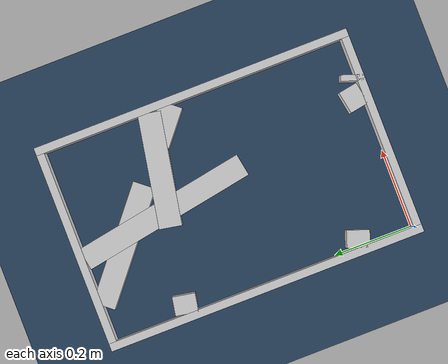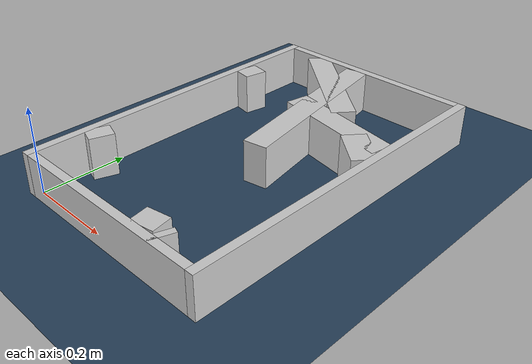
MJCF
<?xml version="1.0" ?>
<mujoco model="generated_real_template">
  <compiler angle="degree"/>
  <option timestep="0.002" integrator="implicitfast" iterations="100" cone="elliptic"/>
  <default>
    <geom density="1"/>
  </default>
  <asset>
    <texture builtin="gradient" height="3072" rgb1="0.3 0.5 0.7" rgb2="0 0 0" type="skybox" width="512"/>
    <texture builtin="checker" height="300" mark="edge" markrgb="0.8 0.8 0.8" name="groundplane" rgb1="0.2 0.3 0.4" rgb2="0.1 0.2 0.3" type="2d" width="300"/>
    <material name="groundplane" reflectance="0.2" texrepeat="5 5" texture="groundplane" texuniform="true"/>
  </asset>
  <worldbody>
    <light dir="0 0 -1" directional="true" pos="0 0 1.5"/>
    <geom name="floor" type="plane" condim="4" friction="0.5 0.005 0.001" material="groundplane" size="0 0 0.05"/>
    <body name="walls">
      <geom name="wall_boundary_left" type="box" condim="4" friction="1.0 0.005 0.0001" rgba="0.8 0.8 0.8 1" pos="-0.010000 0.387500 0.050000" euler="0 0 0.000000" size="0.010000 0.407500 0.050000"/>
      <geom name="wall_boundary_right" type="box" condim="4" friction="1.0 0.005 0.0001" rgba="0.8 0.8 0.8 1" pos="0.500000 0.387500 0.050000" euler="0 0 0.000000" size="0.010000 0.407500 0.050000"/>
      <geom name="wall_boundary_bottom" type="box" condim="4" friction="1.0 0.005 0.0001" rgba="0.8 0.8 0.8 1" pos="0.245000 -0.010000 0.050000" euler="0 0 0.000000" size="0.245000 0.010000 0.050000"/>
      <geom name="wall_boundary_top" type="box" condim="4" friction="1.0 0.005 0.0001" rgba="0.8 0.8 0.8 1" pos="0.245000 0.785000 0.050000" euler="0 0 0.000000" size="0.245000 0.010000 0.050000"/>
      <geom name="wall_inner_1_1" type="box" condim="4" friction="1.0 0.005 0.0001" rgba="0.8 0.8 0.8 1" pos="0.350451 0.527267 0.050000" euler="0 0 169.669061" size="0.141849 0.028500 0.050000"/>
      <geom name="wall_inner_1_2" type="box" condim="4" friction="1.0 0.005 0.0001" rgba="0.8 0.8 0.8 1" pos="0.023126 0.586935 0.050000" euler="0 0 169.669061" size="0.023507 0.028500 0.050000"/>
      <geom name="wall_inner_2_1" type="box" condim="4" friction="1.0 0.005 0.0001" rgba="0.8 0.8 0.8 1" pos="0.020697 0.136326 0.050000" euler="0 0 -18.857494" size="0.021871 0.028500 0.050000"/>
      <geom name="wall_inner_2_2" type="box" condim="4" friction="1.0 0.005 0.0001" rgba="0.8 0.8 0.8 1" pos="0.392266 0.009417 0.050000" euler="0 0 -18.857494" size="0.007568 0.028500 0.050000"/>
      <geom name="wall_inner_3_1" type="box" condim="4" friction="1.0 0.005 0.0001" rgba="0.8 0.8 0.8 1" pos="0.344934 0.023854 0.050000" euler="0 0 99.972940" size="0.024220 0.028500 0.050000"/>
      <geom name="wall_inner_3_2" type="box" condim="4" friction="1.0 0.005 0.0001" rgba="0.8 0.8 0.8 1" pos="0.251636 0.554436 0.050000" euler="0 0 99.972940" size="0.223948 0.028500 0.050000"/>
      <geom name="wall_inner_4_1" type="box" condim="4" friction="1.0 0.005 0.0001" rgba="0.8 0.8 0.8 1" pos="0.210483 0.674129 0.050000" euler="0 0 -39.468012" size="0.155540 0.028500 0.050000"/>
      <geom name="wall_inner_4_2" type="box" condim="4" friction="1.0 0.005 0.0001" rgba="0.8 0.8 0.8 1" pos="0.449881 0.477009 0.050000" euler="0 0 -39.468012" size="0.051969 0.028500 0.050000"/>
    </body>
  </worldbody>
</mujoco>
